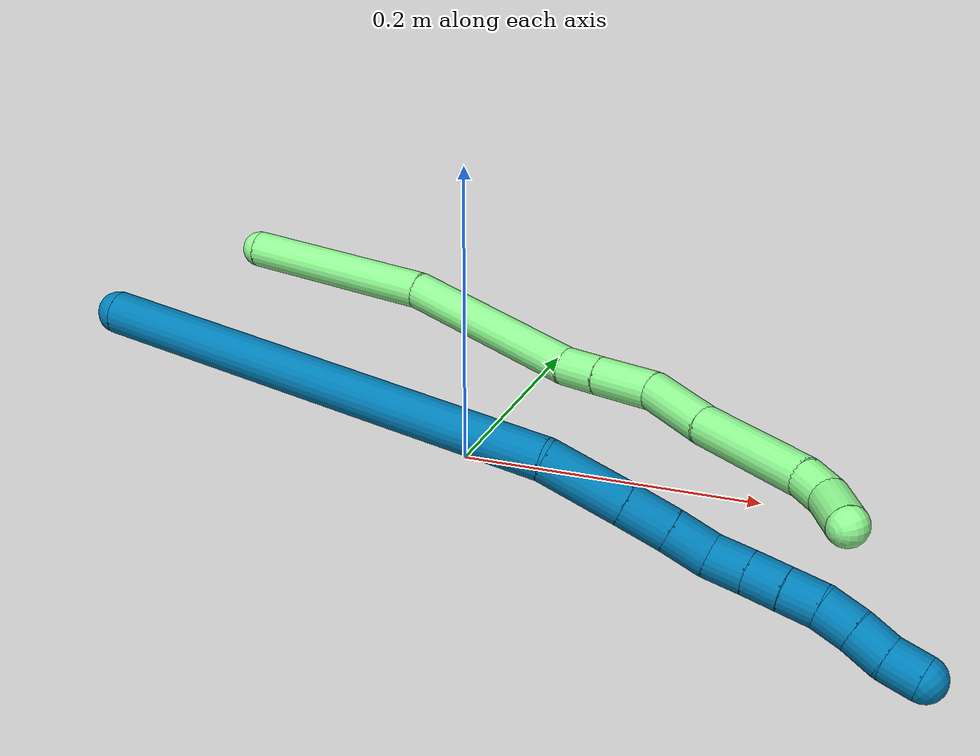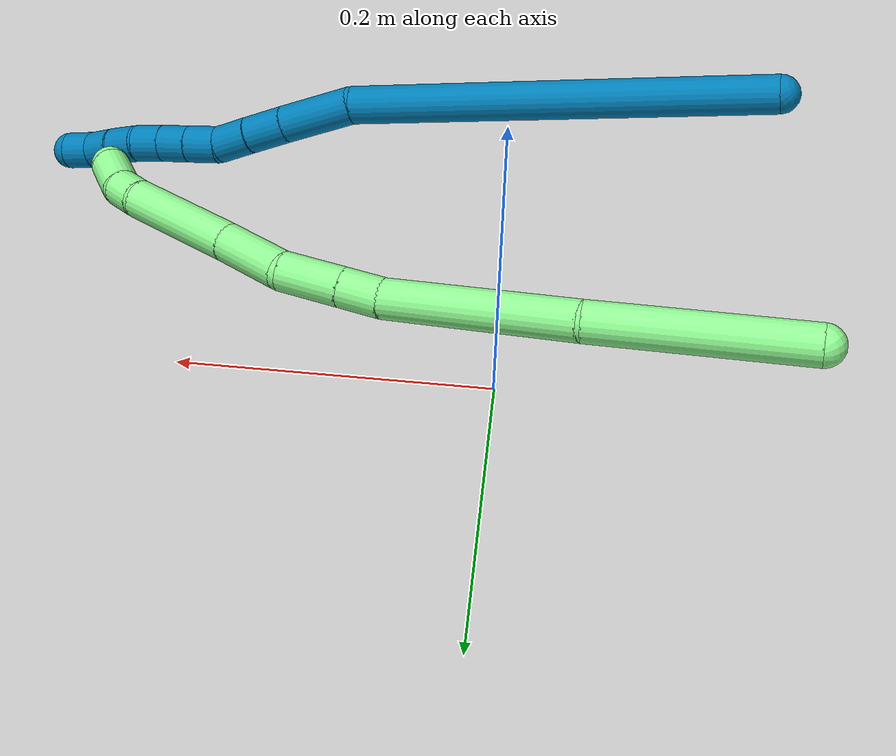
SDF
<sdf version="1.7">
 <world name="default">
  <model name="9">
   <static>0</static>
   <link name="9">
    <collision name="collision-cylinder-e_1_1_4">
     <pose>0.067574 -0.027513 0.117249 0.230488 0.511314 0.060494</pose>
     <geometry><cylinder><radius>0.0125</radius><length>0.276192</length></cylinder></geometry>
     <surface>
      <friction><ode><mu>1.16</mu><mu2>1.16</mu2><slip1>0</slip1><slip2>0</slip2></ode></friction>
      <contact><ode><kp>1e+06</kp><kd>1</kd><max_vel>0</max_vel><min_depth>0.001</min_depth></ode></contact>
     </surface>
    </collision>
    <visual name="visual-cylinder-e_1_1_4">
     <pose>0.067574 -0.027513 0.117249 0.230488 0.511314 0.060494</pose>
     <geometry><cylinder><radius>0.0125</radius><length>0.276192</length></cylinder></geometry>
     <material><ambient>0 0.490196 0.709804 1</ambient></material>
    </visual>
    <collision name="collision-cylinder-e_2_4_5">
     <pose>0.141459 -0.060795 0.257346 0.247284 0.261713 0.032709</pose>
     <geometry><cylinder><radius>0.0125</radius><length>0.048791</length></cylinder></geometry>
     <surface>
      <friction><ode><mu>1.16</mu><mu2>1.16</mu2><slip1>0</slip1><slip2>0</slip2></ode></friction>
      <contact><ode><kp>1e+06</kp><kd>1</kd><max_vel>0</max_vel><min_depth>0.001</min_depth></ode></contact>
     </surface>
    </collision>
    <visual name="visual-cylinder-e_2_4_5">
     <pose>0.141459 -0.060795 0.257346 0.247284 0.261713 0.032709</pose>
     <geometry><cylinder><radius>0.0125</radius><length>0.048791</length></cylinder></geometry>
     <material><ambient>0 0.490196 0.709804 1</ambient></material>
    </visual>
    <collision name="collision-cylinder-e_3_5_6">
     <pose>0.151107 -0.069799 0.293025 0.247064 0.246972 0.030819</pose>
     <geometry><cylinder><radius>0.0125</radius><length>0.027294</length></cylinder></geometry>
     <surface>
      <friction><ode><mu>1.16</mu><mu2>1.16</mu2><slip1>0</slip1><slip2>0</slip2></ode></friction>
      <contact><ode><kp>1e+06</kp><kd>1</kd><max_vel>0</max_vel><min_depth>0.001</min_depth></ode></contact>
     </surface>
    </collision>
    <visual name="visual-cylinder-e_3_5_6">
     <pose>0.151107 -0.069799 0.293025 0.247064 0.246972 0.030819</pose>
     <geometry><cylinder><radius>0.0125</radius><length>0.027294</length></cylinder></geometry>
     <material><ambient>0 0.490196 0.709804 1</ambient></material>
    </visual>
    <collision name="collision-cylinder-e_4_6_7">
     <pose>0.157128 -0.075449 0.317506 0.204317 0.221926 0.022844</pose>
     <geometry><cylinder><radius>0.0125</radius><length>0.024394</length></cylinder></geometry>
     <surface>
      <friction><ode><mu>1.16</mu><mu2>1.16</mu2><slip1>0</slip1><slip2>0</slip2></ode></friction>
      <contact><ode><kp>1e+06</kp><kd>1</kd><max_vel>0</max_vel><min_depth>0.001</min_depth></ode></contact>
     </surface>
    </collision>
    <visual name="visual-cylinder-e_4_6_7">
     <pose>0.157128 -0.075449 0.317506 0.204317 0.221926 0.022844</pose>
     <geometry><cylinder><radius>0.0125</radius><length>0.024394</length></cylinder></geometry>
     <material><ambient>0 0.490196 0.709804 1</ambient></material>
    </visual>
    <collision name="collision-cylinder-e_5_7_8">
     <pose>0.165233 -0.078901 0.338881 0.106278 0.506074 0.027506</pose>
     <geometry><cylinder><radius>0.0125</radius><length>0.022361</length></cylinder></geometry>
     <surface>
      <friction><ode><mu>1.16</mu><mu2>1.16</mu2><slip1>0</slip1><slip2>0</slip2></ode></friction>
      <contact><ode><kp>1e+06</kp><kd>1</kd><max_vel>0</max_vel><min_depth>0.001</min_depth></ode></contact>
     </surface>
    </collision>
    <visual name="visual-cylinder-e_5_7_8">
     <pose>0.165233 -0.078901 0.338881 0.106278 0.506074 0.027506</pose>
     <geometry><cylinder><radius>0.0125</radius><length>0.022361</length></cylinder></geometry>
     <material><ambient>0 0.490196 0.709804 1</ambient></material>
    </visual>
    <collision name="collision-cylinder-e_6_8_9">
     <pose>0.17548 -0.080669 0.357468 0.082318 0.497298 0.020912</pose>
     <geometry><cylinder><radius>0.0125</radius><length>0.020237</length></cylinder></geometry>
     <surface>
      <friction><ode><mu>1.16</mu><mu2>1.16</mu2><slip1>0</slip1><slip2>0</slip2></ode></friction>
      <contact><ode><kp>1e+06</kp><kd>1</kd><max_vel>0</max_vel><min_depth>0.001</min_depth></ode></contact>
     </surface>
    </collision>
    <visual name="visual-cylinder-e_6_8_9">
     <pose>0.17548 -0.080669 0.357468 0.082318 0.497298 0.020912</pose>
     <geometry><cylinder><radius>0.0125</radius><length>0.020237</length></cylinder></geometry>
     <material><ambient>0 0.490196 0.709804 1</ambient></material>
    </visual>
    <collision name="collision-cylinder-e_7_9_10">
     <pose>0.185004 -0.082399 0.375352 0.110187 0.477551 0.026847</pose>
     <geometry><cylinder><radius>0.0125</radius><length>0.020441</length></cylinder></geometry>
     <surface>
      <friction><ode><mu>1.16</mu><mu2>1.16</mu2><slip1>0</slip1><slip2>0</slip2></ode></friction>
      <contact><ode><kp>1e+06</kp><kd>1</kd><max_vel>0</max_vel><min_depth>0.001</min_depth></ode></contact>
     </surface>
    </collision>
    <visual name="visual-cylinder-e_7_9_10">
     <pose>0.185004 -0.082399 0.375352 0.110187 0.477551 0.026847</pose>
     <geometry><cylinder><radius>0.0125</radius><length>0.020441</length></cylinder></geometry>
     <material><ambient>0 0.490196 0.709804 1</ambient></material>
    </visual>
    <collision name="collision-cylinder-e_8_10_11">
     <pose>0.192877 -0.083424 0.393968 0.002775 0.319616 0.000447</pose>
     <geometry><cylinder><radius>0.0125</radius><length>0.02021</length></cylinder></geometry>
     <surface>
      <friction><ode><mu>1.16</mu><mu2>1.16</mu2><slip1>0</slip1><slip2>0</slip2></ode></friction>
      <contact><ode><kp>1e+06</kp><kd>1</kd><max_vel>0</max_vel><min_depth>0.001</min_depth></ode></contact>
     </surface>
    </collision>
    <visual name="visual-cylinder-e_8_10_11">
     <pose>0.192877 -0.083424 0.393968 0.002775 0.319616 0.000447</pose>
     <geometry><cylinder><radius>0.0125</radius><length>0.02021</length></cylinder></geometry>
     <material><ambient>0 0.490196 0.709804 1</ambient></material>
    </visual>
    <collision name="collision-cylinder-e_9_11_12">
     <pose>0.198433 -0.082844 0.413278 -0.06231 0.239917 -0.007513</pose>
     <geometry><cylinder><radius>0.0125</radius><length>0.020047</length></cylinder></geometry>
     <surface>
      <friction><ode><mu>1.16</mu><mu2>1.16</mu2><slip1>0</slip1><slip2>0</slip2></ode></friction>
      <contact><ode><kp>1e+06</kp><kd>1</kd><max_vel>0</max_vel><min_depth>0.001</min_depth></ode></contact>
     </surface>
    </collision>
    <visual name="visual-cylinder-e_9_11_12">
     <pose>0.198433 -0.082844 0.413278 -0.06231 0.239917 -0.007513</pose>
     <geometry><cylinder><radius>0.0125</radius><length>0.020047</length></cylinder></geometry>
     <material><ambient>0 0.490196 0.709804 1</ambient></material>
    </visual>
    <collision name="collision-cylinder-e_10_12_2">
     <pose>0.20493 -0.082534 0.432123 0.032415 0.423366 0.006967</pose>
     <geometry><cylinder><radius>0.0125</radius><length>0.020033</length></cylinder></geometry>
     <surface>
      <friction><ode><mu>1.16</mu><mu2>1.16</mu2><slip1>0</slip1><slip2>0</slip2></ode></friction>
      <contact><ode><kp>1e+06</kp><kd>1</kd><max_vel>0</max_vel><min_depth>0.001</min_depth></ode></contact>
     </surface>
    </collision>
    <visual name="visual-cylinder-e_10_12_2">
     <pose>0.20493 -0.082534 0.432123 0.032415 0.423366 0.006967</pose>
     <geometry><cylinder><radius>0.0125</radius><length>0.020033</length></cylinder></geometry>
     <material><ambient>0 0.490196 0.709804 1</ambient></material>
    </visual>
    <collision name="collision-sphere-2">
     <pose>0.209045 -0.08283 0.44125 0 -0 0</pose>
     <geometry><sphere><radius>0.0125</radius></sphere></geometry>
     <surface>
      <friction><ode><mu>1.16</mu><mu2>1.16</mu2><slip1>0</slip1><slip2>0</slip2></ode></friction>
      <contact><ode><kp>1e+06</kp><kd>1</kd><max_vel>0</max_vel><min_depth>0.001</min_depth></ode></contact>
     </surface>
    </collision>
    <visual name="visual-sphere-2">
     <pose>0.209045 -0.08283 0.44125 0 -0 0</pose>
     <geometry><sphere><radius>0.0125</radius></sphere></geometry>
     <material><ambient>0 0.490196 0.709804 1</ambient></material>
    </visual>
    <collision name="collision-sphere-12">
     <pose>0.200815 -0.082238 0.422995 0 -0 0</pose>
     <geometry><sphere><radius>0.0125</radius></sphere></geometry>
     <surface>
      <friction><ode><mu>1.16</mu><mu2>1.16</mu2><slip1>0</slip1><slip2>0</slip2></ode></friction>
      <contact><ode><kp>1e+06</kp><kd>1</kd><max_vel>0</max_vel><min_depth>0.001</min_depth></ode></contact>
     </surface>
    </collision>
    <visual name="visual-sphere-12">
     <pose>0.200815 -0.082238 0.422995 0 -0 0</pose>
     <geometry><sphere><radius>0.0125</radius></sphere></geometry>
     <material><ambient>0 0.490196 0.709804 1</ambient></material>
    </visual>
    <collision name="collision-sphere-11">
     <pose>0.196052 -0.08345 0.403561 0 -0 0</pose>
     <geometry><sphere><radius>0.0125</radius></sphere></geometry>
     <surface>
      <friction><ode><mu>1.16</mu><mu2>1.16</mu2><slip1>0</slip1><slip2>0</slip2></ode></friction>
      <contact><ode><kp>1e+06</kp><kd>1</kd><max_vel>0</max_vel><min_depth>0.001</min_depth></ode></contact>
     </surface>
    </collision>
    <visual name="visual-sphere-11">
     <pose>0.196052 -0.08345 0.403561 0 -0 0</pose>
     <geometry><sphere><radius>0.0125</radius></sphere></geometry>
     <material><ambient>0 0.490196 0.709804 1</ambient></material>
    </visual>
    <collision name="collision-sphere-10">
     <pose>0.189702 -0.083397 0.384374 0 -0 0</pose>
     <geometry><sphere><radius>0.0125</radius></sphere></geometry>
     <surface>
      <friction><ode><mu>1.16</mu><mu2>1.16</mu2><slip1>0</slip1><slip2>0</slip2></ode></friction>
      <contact><ode><kp>1e+06</kp><kd>1</kd><max_vel>0</max_vel><min_depth>0.001</min_depth></ode></contact>
     </surface>
    </collision>
    <visual name="visual-sphere-10">
     <pose>0.189702 -0.083397 0.384374 0 -0 0</pose>
     <geometry><sphere><radius>0.0125</radius></sphere></geometry>
     <material><ambient>0 0.490196 0.709804 1</ambient></material>
    </visual>
    <collision name="collision-sphere-9">
     <pose>0.180307 -0.081401 0.36633 0 -0 0</pose>
     <geometry><sphere><radius>0.0125</radius></sphere></geometry>
     <surface>
      <friction><ode><mu>1.16</mu><mu2>1.16</mu2><slip1>0</slip1><slip2>0</slip2></ode></friction>
      <contact><ode><kp>1e+06</kp><kd>1</kd><max_vel>0</max_vel><min_depth>0.001</min_depth></ode></contact>
     </surface>
    </collision>
    <visual name="visual-sphere-9">
     <pose>0.180307 -0.081401 0.36633 0 -0 0</pose>
     <geometry><sphere><radius>0.0125</radius></sphere></geometry>
     <material><ambient>0 0.490196 0.709804 1</ambient></material>
    </visual>
    <collision name="collision-sphere-4">
     <pose>0.135147 -0.055027 0.234498 0 -0 0</pose>
     <geometry><sphere><radius>0.0125</radius></sphere></geometry>
     <surface>
      <friction><ode><mu>1.16</mu><mu2>1.16</mu2><slip1>0</slip1><slip2>0</slip2></ode></friction>
      <contact><ode><kp>1e+06</kp><kd>1</kd><max_vel>0</max_vel><min_depth>0.001</min_depth></ode></contact>
     </surface>
    </collision>
    <visual name="visual-sphere-4">
     <pose>0.135147 -0.055027 0.234498 0 -0 0</pose>
     <geometry><sphere><radius>0.0125</radius></sphere></geometry>
     <material><ambient>0 0.490196 0.709804 1</ambient></material>
    </visual>
    <collision name="collision-sphere-1">
     <geometry><sphere><radius>0.0125</radius></sphere></geometry>
     <surface>
      <friction><ode><mu>1.16</mu><mu2>1.16</mu2><slip1>0</slip1><slip2>0</slip2></ode></friction>
      <contact><ode><kp>1e+06</kp><kd>1</kd><max_vel>0</max_vel><min_depth>0.001</min_depth></ode></contact>
     </surface>
    </collision>
    <visual name="visual-sphere-1">
     <geometry><sphere><radius>0.0125</radius></sphere></geometry>
     <material><ambient>0 0.490196 0.709804 1</ambient></material>
    </visual>
    <collision name="collision-sphere-8">
     <pose>0.170653 -0.079938 0.348605 0 -0 0</pose>
     <geometry><sphere><radius>0.0125</radius></sphere></geometry>
     <surface>
      <friction><ode><mu>1.16</mu><mu2>1.16</mu2><slip1>0</slip1><slip2>0</slip2></ode></friction>
      <contact><ode><kp>1e+06</kp><kd>1</kd><max_vel>0</max_vel><min_depth>0.001</min_depth></ode></contact>
     </surface>
    </collision>
    <visual name="visual-sphere-8">
     <pose>0.170653 -0.079938 0.348605 0 -0 0</pose>
     <geometry><sphere><radius>0.0125</radius></sphere></geometry>
     <material><ambient>0 0.490196 0.709804 1</ambient></material>
    </visual>
    <collision name="collision-sphere-5">
     <pose>0.147771 -0.066563 0.280193 0 -0 0</pose>
     <geometry><sphere><radius>0.0125</radius></sphere></geometry>
     <surface>
      <friction><ode><mu>1.16</mu><mu2>1.16</mu2><slip1>0</slip1><slip2>0</slip2></ode></friction>
      <contact><ode><kp>1e+06</kp><kd>1</kd><max_vel>0</max_vel><min_depth>0.001</min_depth></ode></contact>
     </surface>
    </collision>
    <visual name="visual-sphere-5">
     <pose>0.147771 -0.066563 0.280193 0 -0 0</pose>
     <geometry><sphere><radius>0.0125</radius></sphere></geometry>
     <material><ambient>0 0.490196 0.709804 1</ambient></material>
    </visual>
    <collision name="collision-sphere-6">
     <pose>0.154444 -0.073035 0.305856 0 -0 0</pose>
     <geometry><sphere><radius>0.0125</radius></sphere></geometry>
     <surface>
      <friction><ode><mu>1.16</mu><mu2>1.16</mu2><slip1>0</slip1><slip2>0</slip2></ode></friction>
      <contact><ode><kp>1e+06</kp><kd>1</kd><max_vel>0</max_vel><min_depth>0.001</min_depth></ode></contact>
     </surface>
    </collision>
    <visual name="visual-sphere-6">
     <pose>0.154444 -0.073035 0.305856 0 -0 0</pose>
     <geometry><sphere><radius>0.0125</radius></sphere></geometry>
     <material><ambient>0 0.490196 0.709804 1</ambient></material>
    </visual>
    <collision name="collision-sphere-7">
     <pose>0.159813 -0.077863 0.329157 0 -0 0</pose>
     <geometry><sphere><radius>0.0125</radius></sphere></geometry>
     <surface>
      <friction><ode><mu>1.16</mu><mu2>1.16</mu2><slip1>0</slip1><slip2>0</slip2></ode></friction>
      <contact><ode><kp>1e+06</kp><kd>1</kd><max_vel>0</max_vel><min_depth>0.001</min_depth></ode></contact>
     </surface>
    </collision>
    <visual name="visual-sphere-7">
     <pose>0.159813 -0.077863 0.329157 0 -0 0</pose>
     <geometry><sphere><radius>0.0125</radius></sphere></geometry>
     <material><ambient>0 0.490196 0.709804 1</ambient></material>
    </visual>
    <inertial>
     <pose>0.113063 -0.048784 0.216141 0 -0 0</pose>
     <mass>0.5</mass>
     <inertia>
      <ixx>0.001672</ixx>
      <ixy>0</ixy>
      <ixz>0</ixz>
      <iyy>0.001841</iyy>
      <iyz>0</iyz>
      <izz>-0.000482</izz>
     </inertia>
    </inertial>
   </link>
   <pose>-0.161709 -0.147831 0.131511 -3.03732 -0.867271 -0.357978</pose>
  </model>
  <model name="13">
   <static>0</static>
   <link name="13">
    <collision name="collision-cylinder-e_1_1_4">
     <pose>0.05658 0.008653 0.03251 -0.260133 1.03436 -0.148537</pose>
     <geometry><cylinder><radius>0.0125</radius><length>0.131652</length></cylinder></geometry>
     <surface>
      <friction><ode><mu>1.16</mu><mu2>1.16</mu2><slip1>0</slip1><slip2>0</slip2></ode></friction>
      <contact><ode><kp>1e+06</kp><kd>1</kd><max_vel>0</max_vel><min_depth>0.001</min_depth></ode></contact>
     </surface>
    </collision>
    <visual name="visual-cylinder-e_1_1_4">
     <pose>0.05658 0.008653 0.03251 -0.260133 1.03436 -0.148537</pose>
     <geometry><cylinder><radius>0.0125</radius><length>0.131652</length></cylinder></geometry>
     <material><ambient>0.564706 0.984314 0.572549 1</ambient></material>
    </visual>
    <collision name="collision-cylinder-e_2_4_5">
     <pose>0.169932 0.032914 0.085274 -0.656584 1.14761 -0.433402</pose>
     <geometry><cylinder><radius>0.0125</radius><length>0.124529</length></cylinder></geometry>
     <surface>
      <friction><ode><mu>1.16</mu><mu2>1.16</mu2><slip1>0</slip1><slip2>0</slip2></ode></friction>
      <contact><ode><kp>1e+06</kp><kd>1</kd><max_vel>0</max_vel><min_depth>0.001</min_depth></ode></contact>
     </surface>
    </collision>
    <visual name="visual-cylinder-e_2_4_5">
     <pose>0.169932 0.032914 0.085274 -0.656584 1.14761 -0.433402</pose>
     <geometry><cylinder><radius>0.0125</radius><length>0.124529</length></cylinder></geometry>
     <material><ambient>0.564706 0.984314 0.572549 1</ambient></material>
    </visual>
    <collision name="collision-cylinder-e_3_5_6">
     <pose>0.239179 0.049309 0.110136 -0.169108 1.21223 -0.117363</pose>
     <geometry><cylinder><radius>0.0125</radius><length>0.026646</length></cylinder></geometry>
     <surface>
      <friction><ode><mu>1.16</mu><mu2>1.16</mu2><slip1>0</slip1><slip2>0</slip2></ode></friction>
      <contact><ode><kp>1e+06</kp><kd>1</kd><max_vel>0</max_vel><min_depth>0.001</min_depth></ode></contact>
     </surface>
    </collision>
    <visual name="visual-cylinder-e_3_5_6">
     <pose>0.239179 0.049309 0.110136 -0.169108 1.21223 -0.117363</pose>
     <geometry><cylinder><radius>0.0125</radius><length>0.026646</length></cylinder></geometry>
     <material><ambient>0.564706 0.984314 0.572549 1</ambient></material>
    </visual>
    <collision name="collision-cylinder-e_4_6_7">
     <pose>0.270346 0.051184 0.121853 -0.151833 1.20353 -0.104374</pose>
     <geometry><cylinder><radius>0.0125</radius><length>0.040051</length></cylinder></geometry>
     <surface>
      <friction><ode><mu>1.16</mu><mu2>1.16</mu2><slip1>0</slip1><slip2>0</slip2></ode></friction>
      <contact><ode><kp>1e+06</kp><kd>1</kd><max_vel>0</max_vel><min_depth>0.001</min_depth></ode></contact>
     </surface>
    </collision>
    <visual name="visual-cylinder-e_4_6_7">
     <pose>0.270346 0.051184 0.121853 -0.151833 1.20353 -0.104374</pose>
     <geometry><cylinder><radius>0.0125</radius><length>0.040051</length></cylinder></geometry>
     <material><ambient>0.564706 0.984314 0.572549 1</ambient></material>
    </visual>
    <collision name="collision-cylinder-e_5_7_8">
     <pose>0.313029 0.055496 0.129099 -1.52777 1.43709 -1.39457</pose>
     <geometry><cylinder><radius>0.0125</radius><length>0.048418</length></cylinder></geometry>
     <surface>
      <friction><ode><mu>1.16</mu><mu2>1.16</mu2><slip1>0</slip1><slip2>0</slip2></ode></friction>
      <contact><ode><kp>1e+06</kp><kd>1</kd><max_vel>0</max_vel><min_depth>0.001</min_depth></ode></contact>
     </surface>
    </collision>
    <visual name="visual-cylinder-e_5_7_8">
     <pose>0.313029 0.055496 0.129099 -1.52777 1.43709 -1.39457</pose>
     <geometry><cylinder><radius>0.0125</radius><length>0.048418</length></cylinder></geometry>
     <material><ambient>0.564706 0.984314 0.572549 1</ambient></material>
    </visual>
    <collision name="collision-cylinder-e_6_8_9">
     <pose>0.376163 0.06187 0.132655 -0.744711 1.4526 -0.667891</pose>
     <geometry><cylinder><radius>0.0125</radius><length>0.078831</length></cylinder></geometry>
     <surface>
      <friction><ode><mu>1.16</mu><mu2>1.16</mu2><slip1>0</slip1><slip2>0</slip2></ode></friction>
      <contact><ode><kp>1e+06</kp><kd>1</kd><max_vel>0</max_vel><min_depth>0.001</min_depth></ode></contact>
     </surface>
    </collision>
    <visual name="visual-cylinder-e_6_8_9">
     <pose>0.376163 0.06187 0.132655 -0.744711 1.4526 -0.667891</pose>
     <geometry><cylinder><radius>0.0125</radius><length>0.078831</length></cylinder></geometry>
     <material><ambient>0.564706 0.984314 0.572549 1</ambient></material>
    </visual>
    <collision name="collision-cylinder-e_7_9_10">
     <pose>0.425486 0.066733 0.135069 -2.10073 1.37821 -1.92593</pose>
     <geometry><cylinder><radius>0.0125</radius><length>0.020748</length></cylinder></geometry>
     <surface>
      <friction><ode><mu>1.16</mu><mu2>1.16</mu2><slip1>0</slip1><slip2>0</slip2></ode></friction>
      <contact><ode><kp>1e+06</kp><kd>1</kd><max_vel>0</max_vel><min_depth>0.001</min_depth></ode></contact>
     </surface>
    </collision>
    <visual name="visual-cylinder-e_7_9_10">
     <pose>0.425486 0.066733 0.135069 -2.10073 1.37821 -1.92593</pose>
     <geometry><cylinder><radius>0.0125</radius><length>0.020748</length></cylinder></geometry>
     <material><ambient>0.564706 0.984314 0.572549 1</ambient></material>
    </visual>
    <collision name="collision-cylinder-e_8_10_2">
     <pose>0.448905 0.069338 0.128063 -2.99417 1.14095 -2.91243</pose>
     <geometry><cylinder><radius>0.0125</radius><length>0.029124</length></cylinder></geometry>
     <surface>
      <friction><ode><mu>1.16</mu><mu2>1.16</mu2><slip1>0</slip1><slip2>0</slip2></ode></friction>
      <contact><ode><kp>1e+06</kp><kd>1</kd><max_vel>0</max_vel><min_depth>0.001</min_depth></ode></contact>
     </surface>
    </collision>
    <visual name="visual-cylinder-e_8_10_2">
     <pose>0.448905 0.069338 0.128063 -2.99417 1.14095 -2.91243</pose>
     <geometry><cylinder><radius>0.0125</radius><length>0.029124</length></cylinder></geometry>
     <material><ambient>0.564706 0.984314 0.572549 1</ambient></material>
    </visual>
    <collision name="collision-sphere-2">
     <pose>0.462142 0.070229 0.122061 0 -0 0</pose>
     <geometry><sphere><radius>0.0125</radius></sphere></geometry>
     <surface>
      <friction><ode><mu>1.16</mu><mu2>1.16</mu2><slip1>0</slip1><slip2>0</slip2></ode></friction>
      <contact><ode><kp>1e+06</kp><kd>1</kd><max_vel>0</max_vel><min_depth>0.001</min_depth></ode></contact>
     </surface>
    </collision>
    <visual name="visual-sphere-2">
     <pose>0.462142 0.070229 0.122061 0 -0 0</pose>
     <geometry><sphere><radius>0.0125</radius></sphere></geometry>
     <material><ambient>0.564706 0.984314 0.572549 1</ambient></material>
    </visual>
    <collision name="collision-sphere-10">
     <pose>0.435668 0.068447 0.134066 0 -0 0</pose>
     <geometry><sphere><radius>0.0125</radius></sphere></geometry>
     <surface>
      <friction><ode><mu>1.16</mu><mu2>1.16</mu2><slip1>0</slip1><slip2>0</slip2></ode></friction>
      <contact><ode><kp>1e+06</kp><kd>1</kd><max_vel>0</max_vel><min_depth>0.001</min_depth></ode></contact>
     </surface>
    </collision>
    <visual name="visual-sphere-10">
     <pose>0.435668 0.068447 0.134066 0 -0 0</pose>
     <geometry><sphere><radius>0.0125</radius></sphere></geometry>
     <material><ambient>0.564706 0.984314 0.572549 1</ambient></material>
    </visual>
    <collision name="collision-sphere-9">
     <pose>0.415303 0.06502 0.136073 0 -0 0</pose>
     <geometry><sphere><radius>0.0125</radius></sphere></geometry>
     <surface>
      <friction><ode><mu>1.16</mu><mu2>1.16</mu2><slip1>0</slip1><slip2>0</slip2></ode></friction>
      <contact><ode><kp>1e+06</kp><kd>1</kd><max_vel>0</max_vel><min_depth>0.001</min_depth></ode></contact>
     </surface>
    </collision>
    <visual name="visual-sphere-9">
     <pose>0.415303 0.06502 0.136073 0 -0 0</pose>
     <geometry><sphere><radius>0.0125</radius></sphere></geometry>
     <material><ambient>0.564706 0.984314 0.572549 1</ambient></material>
    </visual>
    <collision name="collision-sphere-4">
     <pose>0.11316 0.017306 0.06502 0 -0 0</pose>
     <geometry><sphere><radius>0.0125</radius></sphere></geometry>
     <surface>
      <friction><ode><mu>1.16</mu><mu2>1.16</mu2><slip1>0</slip1><slip2>0</slip2></ode></friction>
      <contact><ode><kp>1e+06</kp><kd>1</kd><max_vel>0</max_vel><min_depth>0.001</min_depth></ode></contact>
     </surface>
    </collision>
    <visual name="visual-sphere-4">
     <pose>0.11316 0.017306 0.06502 0 -0 0</pose>
     <geometry><sphere><radius>0.0125</radius></sphere></geometry>
     <material><ambient>0.564706 0.984314 0.572549 1</ambient></material>
    </visual>
    <collision name="collision-sphere-1">
     <geometry><sphere><radius>0.0125</radius></sphere></geometry>
     <surface>
      <friction><ode><mu>1.16</mu><mu2>1.16</mu2><slip1>0</slip1><slip2>0</slip2></ode></friction>
      <contact><ode><kp>1e+06</kp><kd>1</kd><max_vel>0</max_vel><min_depth>0.001</min_depth></ode></contact>
     </surface>
    </collision>
    <visual name="visual-sphere-1">
     <geometry><sphere><radius>0.0125</radius></sphere></geometry>
     <material><ambient>0.564706 0.984314 0.572549 1</ambient></material>
    </visual>
    <collision name="collision-sphere-8">
     <pose>0.337022 0.05872 0.129238 0 -0 0</pose>
     <geometry><sphere><radius>0.0125</radius></sphere></geometry>
     <surface>
      <friction><ode><mu>1.16</mu><mu2>1.16</mu2><slip1>0</slip1><slip2>0</slip2></ode></friction>
      <contact><ode><kp>1e+06</kp><kd>1</kd><max_vel>0</max_vel><min_depth>0.001</min_depth></ode></contact>
     </surface>
    </collision>
    <visual name="visual-sphere-8">
     <pose>0.337022 0.05872 0.129238 0 -0 0</pose>
     <geometry><sphere><radius>0.0125</radius></sphere></geometry>
     <material><ambient>0.564706 0.984314 0.572549 1</ambient></material>
    </visual>
    <collision name="collision-sphere-5">
     <pose>0.226704 0.048522 0.105527 0 -0 0</pose>
     <geometry><sphere><radius>0.0125</radius></sphere></geometry>
     <surface>
      <friction><ode><mu>1.16</mu><mu2>1.16</mu2><slip1>0</slip1><slip2>0</slip2></ode></friction>
      <contact><ode><kp>1e+06</kp><kd>1</kd><max_vel>0</max_vel><min_depth>0.001</min_depth></ode></contact>
     </surface>
    </collision>
    <visual name="visual-sphere-5">
     <pose>0.226704 0.048522 0.105527 0 -0 0</pose>
     <geometry><sphere><radius>0.0125</radius></sphere></geometry>
     <material><ambient>0.564706 0.984314 0.572549 1</ambient></material>
    </visual>
    <collision name="collision-sphere-6">
     <pose>0.251655 0.050096 0.114745 0 -0 0</pose>
     <geometry><sphere><radius>0.0125</radius></sphere></geometry>
     <surface>
      <friction><ode><mu>1.16</mu><mu2>1.16</mu2><slip1>0</slip1><slip2>0</slip2></ode></friction>
      <contact><ode><kp>1e+06</kp><kd>1</kd><max_vel>0</max_vel><min_depth>0.001</min_depth></ode></contact>
     </surface>
    </collision>
    <visual name="visual-sphere-6">
     <pose>0.251655 0.050096 0.114745 0 -0 0</pose>
     <geometry><sphere><radius>0.0125</radius></sphere></geometry>
     <material><ambient>0.564706 0.984314 0.572549 1</ambient></material>
    </visual>
    <collision name="collision-sphere-7">
     <pose>0.289036 0.052271 0.12896 0 -0 0</pose>
     <geometry><sphere><radius>0.0125</radius></sphere></geometry>
     <surface>
      <friction><ode><mu>1.16</mu><mu2>1.16</mu2><slip1>0</slip1><slip2>0</slip2></ode></friction>
      <contact><ode><kp>1e+06</kp><kd>1</kd><max_vel>0</max_vel><min_depth>0.001</min_depth></ode></contact>
     </surface>
    </collision>
    <visual name="visual-sphere-7">
     <pose>0.289036 0.052271 0.12896 0 -0 0</pose>
     <geometry><sphere><radius>0.0125</radius></sphere></geometry>
     <material><ambient>0.564706 0.984314 0.572549 1</ambient></material>
    </visual>
    <inertial>
     <pose>0.225045 0.03914 0.091909 0 -0 0</pose>
     <mass>0.5</mass>
     <inertia>
      <ixx>0.000154</ixx>
      <ixy>0</ixy>
      <ixz>0</ixz>
      <iyy>0.000376</iyy>
      <iyz>0</iyz>
      <izz>-0.000451</izz>
     </inertia>
    </inertial>
   </link>
   <pose>-0.179203 0.055526 0.111381 -1.50109 -0.013087 -0.646973</pose>
  </model>
 </world>
</sdf>
